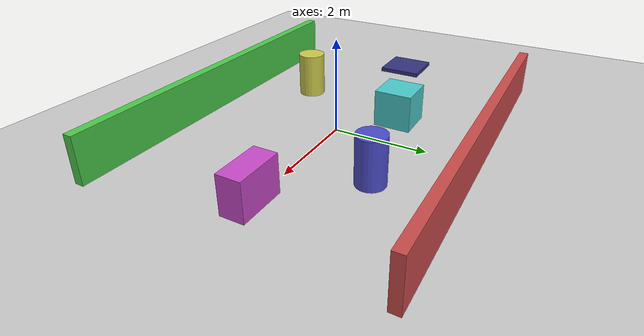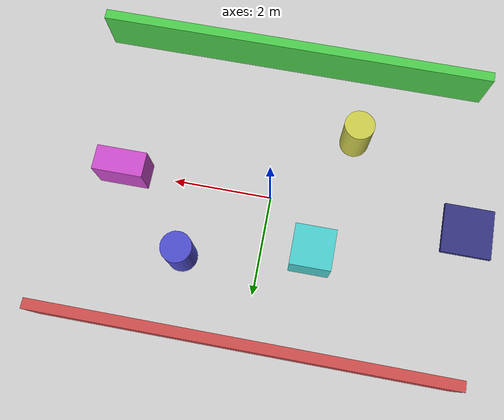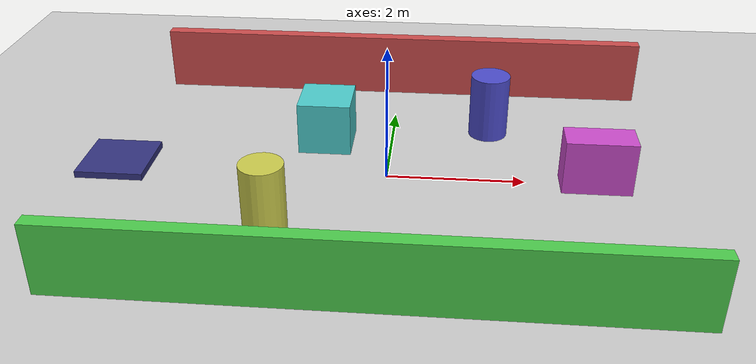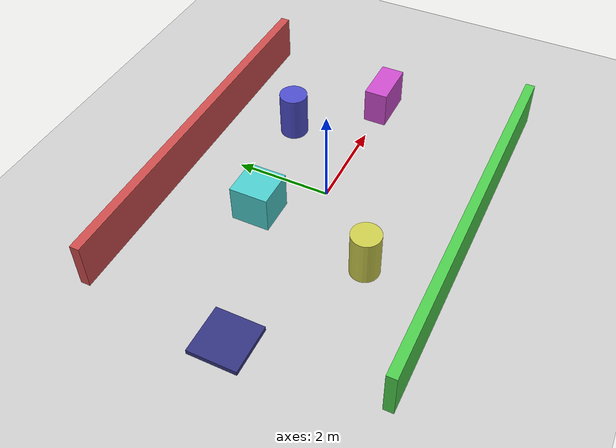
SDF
<?xml version="1.0"?>
<sdf version="1.6">
  <world name="obstacle_world">
    <plugin
      filename="gz-sim-physics-system"
      name="gz::sim::systems::Physics">
    </plugin>
    <plugin
      filename="gz-sim-user-commands-system"
      name="gz::sim::systems::UserCommands">
    </plugin>
    <plugin
      filename="gz-sim-scene-broadcaster-system"
      name="gz::sim::systems::SceneBroadcaster">
    </plugin>
    <plugin
      filename="gz-sim-sensors-system"
      name="gz::sim::systems::Sensors">
      <render_engine>ogre2</render_engine>
    </plugin>
    <plugin
      filename="gz-sim-imu-system"
      name="gz::sim::systems::Imu">
    </plugin>

    <!-- Ground Plane -->
    <include>
      <uri>https://fuel.gazebosim.org/1.0/OpenRobotics/models/Ground Plane</uri>
    </include>

    <!-- Sun -->
    <include>
      <uri>https://fuel.gazebosim.org/1.0/OpenRobotics/models/Sun</uri>
    </include>

    <!-- Start Platform -->
    <model name="start_platform">
      <static>true</static>
      <pose>-4.0 0.0 0.1 0 0 0</pose>
      <link name="link">
        <collision name="collision">
          <geometry>
            <box>
              <size>1.0 1.0 0.1</size>
            </box>
          </geometry>
        </collision>
        <visual name="visual">
          <geometry>
            <box>
              <size>1.0 1.0 0.1</size>
            </box>
          </geometry>
          <material>
            <ambient>0.2 0.2 0.5 1</ambient>
            <diffuse>0.2 0.2 0.5 1</diffuse>
          </material>
        </visual>
      </link>
    </model>

    <!-- Obstacles -->
    <!-- Wall 1 -->
    <model name="wall1">
      <static>true</static>
      <link name="link">
        <collision name="collision">
          <geometry>
            <box>
              <size>8.0 0.2 1.0</size>
            </box>
          </geometry>
        </collision>
        <visual name="visual">
          <geometry>
            <box>
              <size>8.0 0.2 1.0</size>
            </box>
          </geometry>
          <material>
            <ambient>0.8 0.3 0.3 1</ambient>
            <diffuse>0.8 0.3 0.3 1</diffuse>
          </material>
        </visual>
      </link>
      <pose>0.0 3.0 0.5 0 0 0</pose>
    </model>

    <!-- Wall 2 -->
    <model name="wall2">
      <static>true</static>
      <link name="link">
        <collision name="collision">
          <geometry>
            <box>
              <size>8.0 0.2 1.0</size>
            </box>
          </geometry>
        </collision>
        <visual name="visual">
          <geometry>
            <box>
              <size>8.0 0.2 1.0</size>
            </box>
          </geometry>
          <material>
            <ambient>0.3 0.8 0.3 1</ambient>
            <diffuse>0.3 0.8 0.3 1</diffuse>
          </material>
        </visual>
      </link>
      <pose>0.0 -3.0 0.5 0 0 0</pose>
    </model>

    <!-- Pillar 1 -->
    <model name="pillar1">
      <static>true</static>
      <link name="link">
        <collision name="collision">
          <geometry>
            <cylinder>
              <radius>0.3</radius>
              <length>1.0</length>
            </cylinder>
          </geometry>
        </collision>
        <visual name="visual">
          <geometry>
            <cylinder>
              <radius>0.3</radius>
              <length>1.0</length>
            </cylinder>
          </geometry>
          <material>
            <ambient>0.3 0.3 0.8 1</ambient>
            <diffuse>0.3 0.3 0.8 1</diffuse>
          </material>
        </visual>
      </link>
      <pose>1.5 1.5 0.5 0 0 0</pose>
    </model>

    <!-- Pillar 2 -->
    <model name="pillar2">
      <static>true</static>
      <link name="link">
        <collision name="collision">
          <geometry>
            <cylinder>
              <radius>0.3</radius>
              <length>1.0</length>
            </cylinder>
          </geometry>
        </collision>
        <visual name="visual">
          <geometry>
            <cylinder>
              <radius>0.3</radius>
              <length>1.0</length>
            </cylinder>
          </geometry>
          <material>
            <ambient>0.8 0.8 0.3 1</ambient>
            <diffuse>0.8 0.8 0.3 1</diffuse>
          </material>
        </visual>
      </link>
      <pose>-1.5 -1.5 0.5 0 0 0</pose>
    </model>

    <!-- Box Obstacle 1 -->
    <model name="box1">
      <static>true</static>
      <link name="link">
        <collision name="collision">
          <geometry>
            <box>
              <size>1.0 0.5 0.8</size>
            </box>
          </geometry>
        </collision>
        <visual name="visual">
          <geometry>
            <box>
              <size>1.0 0.5 0.8</size>
            </box>
          </geometry>
          <material>
            <ambient>0.8 0.3 0.8 1</ambient>
            <diffuse>0.8 0.3 0.8 1</diffuse>
          </material>
        </visual>
      </link>
      <pose>3.0 0.0 0.4 0 0 0</pose>
    </model>

    <!-- Box Obstacle 2 -->
    <model name="box2">
      <static>true</static>
      <link name="link">
        <collision name="collision">
          <geometry>
            <box>
              <size>0.8 0.8 0.8</size>
            </box>
          </geometry>
        </collision>
        <visual name="visual">
          <geometry>
            <box>
              <size>0.8 0.8 0.8</size>
            </box>
          </geometry>
          <material>
            <ambient>0.3 0.8 0.8 1</ambient>
            <diffuse>0.3 0.8 0.8 1</diffuse>
          </material>
        </visual>
      </link>
      <pose>-1.0 1.0 0.4 0 0 0</pose>
    </model>

    <scene>
      <shadows>true</shadows>
      <ambient>0.4 0.4 0.4 1</ambient>
      <background>0.7 0.7 0.8 1</background>
    </scene>

    <gui fullscreen='0'>
      <camera name='user_camera'>
        <pose>5.0 0.0 3.0 0 0.3 0</pose>
        <view_controller>orbit</view_controller>
        <projection_type>perspective</projection_type>
      </camera>
    </gui>

    <physics type="ode">
      <real_time_update_rate>1000.0</real_time_update_rate>
      <max_step_size>0.001</max_step_size>
      <real_time_factor>1</real_time_factor>
      <ode>
        <solver>
          <type>quick</type>
          <iters>150</iters>
          <precon_iters>0</precon_iters>
          <sor>1.400000</sor>
          <use_dynamic_moi_rescaling>1</use_dynamic_moi_rescaling>
        </solver>
        <constraints>
          <cfm>0.00001</cfm>
          <erp>0.2</erp>
          <contact_max_correcting_vel>2000.000000</contact_max_correcting_vel>
          <contact_surface_layer>0.01000</contact_surface_layer>
        </constraints>
      </ode>
    </physics>
  </world>
</sdf>
